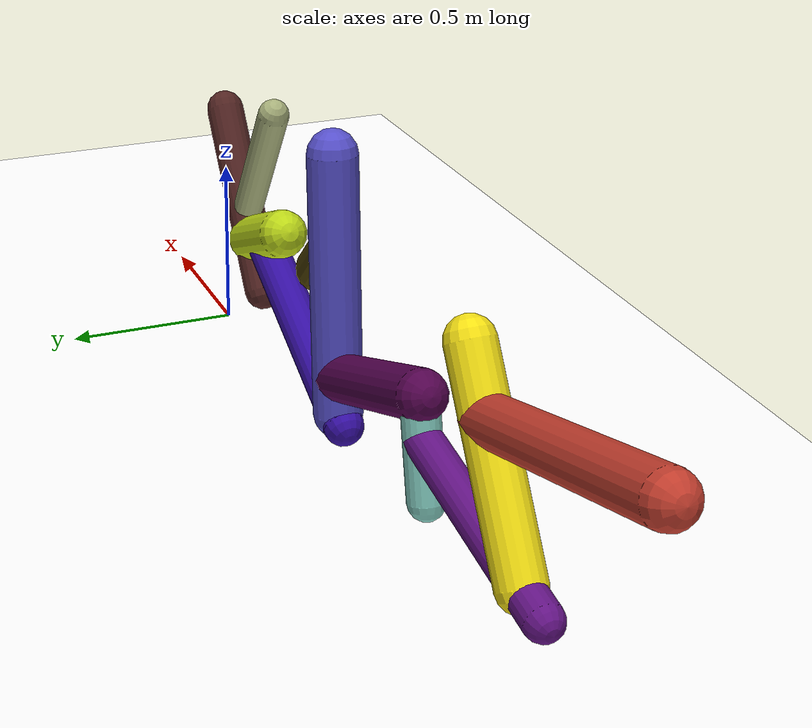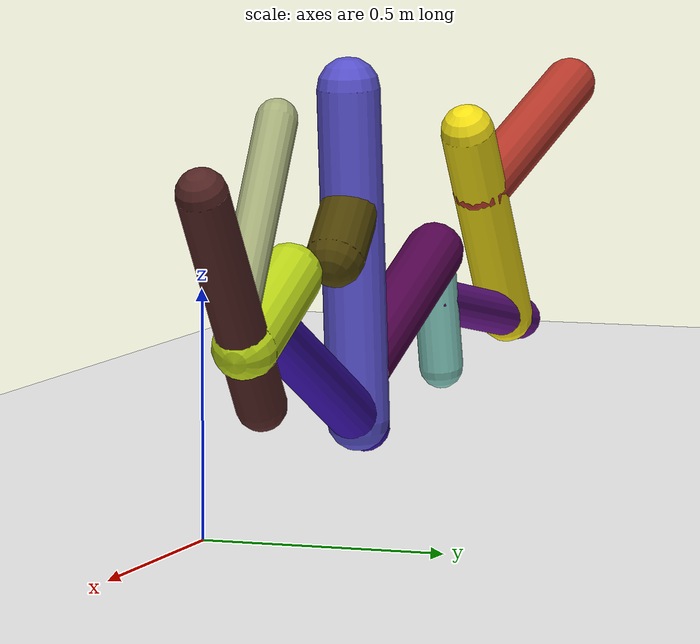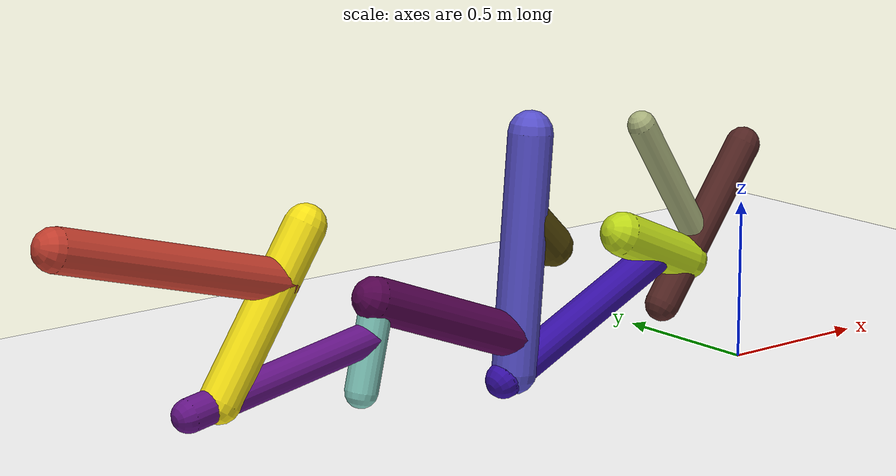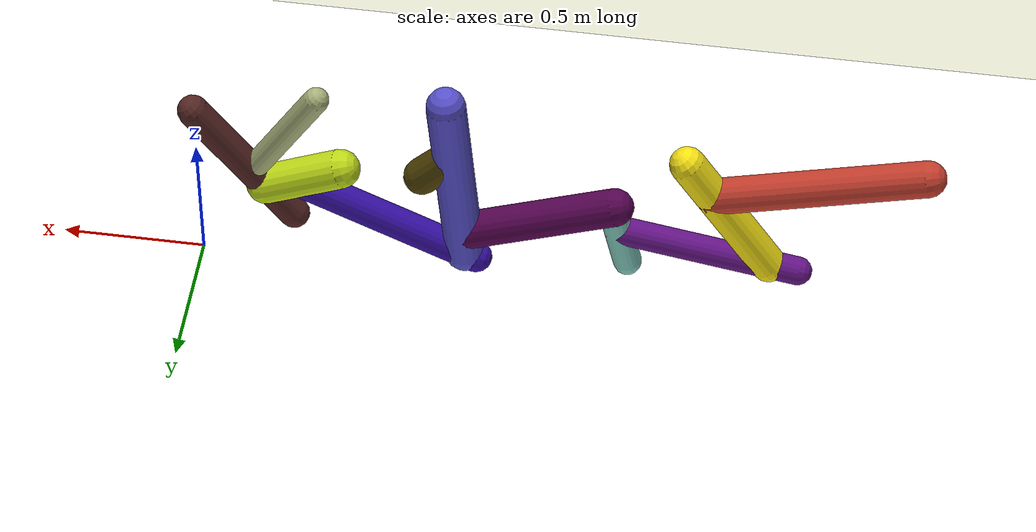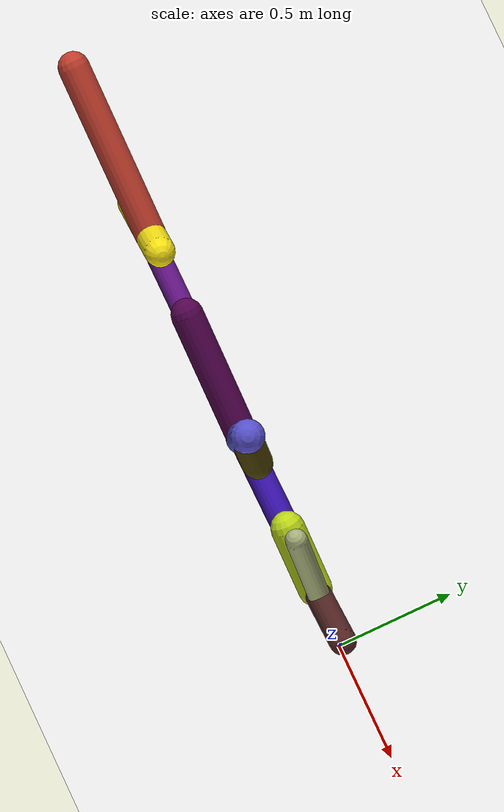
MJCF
<mujoco model="morphology">
  <option timestep="0.01"/>
  <default>
    <default class="/"/>
    <default class="0/"/>
    <default class="0/1/"/>
    <default class="0/2/"/>
    <default class="0/2/3/"/>
    <default class="0/2/3/4/"/>
    <default class="0/2/3/4/5/"/>
    <default class="0/2/3/4/6/"/>
    <default class="0/2/3/4/6/7/"/>
    <default class="0/2/3/4/6/7/8/"/>
    <default class="0/2/3/4/6/7/8/9/"/>
    <default class="0/2/3/4/6/7/8/9/10/"/>
  </default>
  <asset>
    <texture name="texplane" type="2d" builtin="checker" rgb1="0.10000000000000001 0.20000000000000001 0.29999999999999999" rgb2="0.20000000000000001 0.29999999999999999 0.40000000000000002" width="300" height="300"/>
    <material name="MatPlane" class="/" texture="texplane" texrepeat="20 20" specular="1" shininess="1" reflectance="0.5"/>
  </asset>
  <worldbody>
    <light name="//unnamed_light_0" class="/" directional="true" pos="0 0 1.5" dir="0 0 -1.3" cutoff="100" exponent="1" diffuse="1 1 1" specular="0.10000000000000001 0.10000000000000001 0.10000000000000001"/>
    <geom name="ground" class="/" type="plane" size="15 15 0.5" material="MatPlane" rgba="1 1 1 1"/>
    <site name="body" class="/" size="9.9999999999999995e-07 9.9999999999999995e-07 9.9999999999999995e-07" pos="0 0 0.68580863475799558"/>
    <body pos="0 0 0.68580863475799558" name="0/">
      <joint name="0/rootx/" class="/" type="slide" axis="1 0 0" limited="false" stiffness="0" armature="0" damping="0"/>
      <joint name="0/rootz/" class="/" type="slide" axis="0 0 1" limited="false" stiffness="0" armature="0" damping="0"/>
      <joint name="0/rooty/" class="/" type="hinge" axis="0 1 0" limited="false" stiffness="0" armature="0" damping="0"/>
      <geom name="0/geom" class="0/" type="capsule" contype="1" conaffinity="1" condim="3" size="0.054260358561492972" rgba="0.32704941696526657 0.14677226951037003 0.13913610244100971 1" friction="0.59999999999999998 0.10000000000000001 0.10000000000000001" fromto="0 0 0 -0.33195108732691458 0 -0.45965658521693992"/>
      <site name="0/end0" class="0/" size="0.0050000000000000001" pos="-0.33195108732691458 0 -0.45965658521693992"/>
      <site name="0/attach1" class="0/" size="9.9999999999999995e-07 9.9999999999999995e-07 9.9999999999999995e-07" pos="-0.19070182479982925 0 -0.26406706568730498"/>
      <body pos="-0.19070182479982925 0 -0.26406706568730498" name="0/1/">
        <geom name="0/1/geom" class="0/1/" type="capsule" contype="1" conaffinity="1" condim="3" size="0.044080219348491143" rgba="0.65968714395343553 0.69303136494858053 0.48432645758637494 1" friction="0.59999999999999998 0.10000000000000001 0.10000000000000001" fromto="0 0 0 -0.2365894241298383 0 0.37920692258653221"/>
        <site name="0/1/end1" class="0/1/" size="0.0050000000000000001" pos="-0.2365894241298383 0 0.37920692258653221"/>
      </body>
      <site name="0/attach2" class="0/" size="9.9999999999999995e-07 9.9999999999999995e-07 9.9999999999999995e-07" pos="-0.23808304077486786 0 -0.32967639419980332"/>
      <body pos="-0.23808304077486786 0 -0.32967639419980332" name="0/2/">
        <joint name="0/2/joint/" class="0/" type="hinge" axis="0 1 0" limited="true" range="-53.213120789474885 53.213120789474885"/>
        <geom name="0/2/geom" class="0/2/" type="capsule" contype="1" conaffinity="1" condim="3" size="0.068732582123802663" rgba="0.74610864140701905 0.85324672177204419 0.096344752977886805 1" friction="0.59999999999999998 0.10000000000000001 0.10000000000000001" fromto="0 0 0 -0.26247551142805731 0 0.11743449183391708"/>
        <site name="0/2/end2" class="0/2/" size="0.0050000000000000001" pos="-0.26247551142805731 0 0.11743449183391708"/>
        <site name="0/2/attach3" class="0/2/" size="9.9999999999999995e-07 9.9999999999999995e-07 9.9999999999999995e-07" pos="-0.098025205928687201 0 0.04385757811278973"/>
        <body pos="-0.098025205928687201 0 0.04385757811278973" name="0/2/3/">
          <joint name="0/2/3/joint/" class="0/2/" type="hinge" axis="0 1 0" limited="true" range="-59.391188494943549 59.391188494943549"/>
          <geom name="0/2/3/geom" class="0/2/3/" type="capsule" contype="1" conaffinity="1" condim="3" size="0.056071024756174564" rgba="0.21035384421745895 0.057550101113748364 0.64202002893227506 1" friction="0.59999999999999998 0.10000000000000001 0.10000000000000001" fromto="0 0 0 -0.63202428860090043 0 -0.29998981165278604"/>
          <site name="0/2/3/end3" class="0/2/3/" size="0.0050000000000000001" pos="-0.63202428860090043 0 -0.29998981165278604"/>
          <site name="0/2/3/attach4" class="0/2/3/" size="9.9999999999999995e-07 9.9999999999999995e-07 9.9999999999999995e-07" pos="-0.59226025789215875 0 -0.28111584699981745"/>
          <body pos="-0.59226025789215875 0 -0.28111584699981745" name="0/2/3/4/">
            <joint name="0/2/3/4/joint/" class="0/2/3/" type="hinge" axis="0 1 0" limited="true" range="-60.710786574107111 60.710786574107111"/>
            <geom name="0/2/3/4/geom" class="0/2/3/4/" type="capsule" contype="1" conaffinity="1" condim="3" size="0.067873996519004415" rgba="0.3475207998297617 0.32059522152390896 0.80847489579582765 1" friction="0.59999999999999998 0.10000000000000001 0.10000000000000001" fromto="0 0 0 0.061850025608420567 0 0.71507226587167327"/>
            <site name="0/2/3/4/end4" class="0/2/3/4/" size="0.0050000000000000001" pos="0.061850025608420567 0 0.71507226587167327"/>
            <site name="0/2/3/4/attach5" class="0/2/3/4/" size="9.9999999999999995e-07 9.9999999999999995e-07 9.9999999999999995e-07" pos="0.040820488887422055 0 0.47194159089797255"/>
            <body pos="0.040820488887422055 0 0.47194159089797255" name="0/2/3/4/5/">
              <joint name="0/2/3/4/5/joint/" class="0/2/3/4/" type="hinge" axis="0 1 0" limited="true" range="-61.790244396690746 61.790244396690746"/>
              <geom name="0/2/3/4/5/geom" class="0/2/3/4/5/" type="capsule" contype="1" conaffinity="1" condim="3" size="0.063943721890243027" rgba="0.30448618531165583 0.25248548066841126 0.019521781444720054 1" friction="0.59999999999999998 0.10000000000000001 0.10000000000000001" fromto="0 0 0 0.10558627910968954 0 -0.10886965304412488"/>
              <site name="0/2/3/4/5/end5" class="0/2/3/4/5/" size="0.0050000000000000001" pos="0.10558627910968954 0 -0.10886965304412488"/>
            </body>
            <site name="0/2/3/4/attach6" class="0/2/3/4/" size="9.9999999999999995e-07 9.9999999999999995e-07 9.9999999999999995e-07" pos="0.0090526510237380255 0 0.10466122877091526"/>
            <body pos="0.0090526510237380255 0 0.10466122877091526" name="0/2/3/4/6/">
              <joint name="0/2/3/4/6/joint/" class="0/2/3/4/" type="hinge" axis="0 1 0" limited="true" range="-57.54107020351077 57.54107020351077"/>
              <geom name="0/2/3/4/6/geom" class="0/2/3/4/6/" type="capsule" contype="1" conaffinity="1" condim="3" size="0.066130766676136932" rgba="0.32932568755491554 0.013809160282863719 0.30974531119487947 1" friction="0.59999999999999998 0.10000000000000001 0.10000000000000001" fromto="0 0 0 -0.52524525501919794 0 0.20499990527725664"/>
              <site name="0/2/3/4/6/end6" class="0/2/3/4/6/" size="0.0050000000000000001" pos="-0.52524525501919794 0 0.20499990527725664"/>
              <site name="0/2/3/4/6/attach7" class="0/2/3/4/6/" size="9.9999999999999995e-07 9.9999999999999995e-07 9.9999999999999995e-07" pos="-0.51503046824063303 0 0.2010131385201602"/>
              <body pos="-0.51503046824063303 0 0.2010131385201602" name="0/2/3/4/6/7/">
                <geom name="0/2/3/4/6/7/geom" class="0/2/3/4/6/7/" type="capsule" contype="1" conaffinity="1" condim="3" size="0.049247837761727364" rgba="0.51276863570486719 0.79966507413548815 0.75159527533086978 1" friction="0.59999999999999998 0.10000000000000001 0.10000000000000001" fromto="0 0 0 -0.061004302297028357 0 -0.26017518054999311"/>
                <site name="0/2/3/4/6/7/end7" class="0/2/3/4/6/7/" size="0.0050000000000000001" pos="-0.061004302297028357 0 -0.26017518054999311"/>
                <site name="0/2/3/4/6/7/attach8" class="0/2/3/4/6/7/" size="9.9999999999999995e-07 9.9999999999999995e-07 9.9999999999999995e-07" pos="-0.024912975831475524 0 -0.10625050596320808"/>
                <body pos="-0.024912975831475524 0 -0.10625050596320808" name="0/2/3/4/6/7/8/">
                  <joint name="0/2/3/4/6/7/8/joint/" class="0/2/3/4/6/7/" type="hinge" axis="0 1 0" limited="true" range="-38.247239913740998 38.247239913740998"/>
                  <geom name="0/2/3/4/6/7/8/geom" class="0/2/3/4/6/7/8/" type="capsule" contype="1" conaffinity="1" condim="3" size="0.049394578200541155" rgba="0.39234514922908725 0.076862908707125532 0.52506099170520881 1" friction="0.59999999999999998 0.10000000000000001 0.10000000000000001" fromto="0 0 0 -0.62222639857985973 0 -0.11076090431372188"/>
                  <site name="0/2/3/4/6/7/8/end8" class="0/2/3/4/6/7/8/" size="0.0050000000000000001" pos="-0.62222639857985973 0 -0.11076090431372188"/>
                  <site name="0/2/3/4/6/7/8/attach9" class="0/2/3/4/6/7/8/" size="9.9999999999999995e-07 9.9999999999999995e-07 9.9999999999999995e-07" pos="-0.52087518368604235 0 -0.092719637918476192"/>
                  <body pos="-0.52087518368604235 0 -0.092719637918476192" name="0/2/3/4/6/7/8/9/">
                    <joint name="0/2/3/4/6/7/8/9/joint/" class="0/2/3/4/6/7/8/" type="hinge" axis="0 1 0" limited="true" range="-41.018376501175275 41.018376501175275"/>
                    <geom name="0/2/3/4/6/7/8/9/geom" class="0/2/3/4/6/7/8/9/" type="capsule" contype="1" conaffinity="1" condim="3" size="0.06172084904227073" rgba="0.97038884886198118 0.88637904758817065 0.077097362139464387 1" friction="0.59999999999999998 0.10000000000000001 0.10000000000000001" fromto="0 0 0 0.29820930946840152 0 0.45465784196605541"/>
                    <site name="0/2/3/4/6/7/8/9/end9" class="0/2/3/4/6/7/8/9/" size="0.0050000000000000001" pos="0.29820930946840152 0 0.45465784196605541"/>
                    <site name="0/2/3/4/6/7/8/9/attach10" class="0/2/3/4/6/7/8/9/" size="9.9999999999999995e-07 9.9999999999999995e-07 9.9999999999999995e-07" pos="0.20376966965654206 0 0.31067265615997208"/>
                    <body pos="0.20376966965654206 0 0.31067265615997208" name="0/2/3/4/6/7/8/9/10/">
                      <joint name="0/2/3/4/6/7/8/9/10/joint/" class="0/2/3/4/6/7/8/9/" type="hinge" axis="0 1 0" limited="true" range="-40.552238678890859 40.552238678890859"/>
                      <geom name="0/2/3/4/6/7/8/9/10/geom" class="0/2/3/4/6/7/8/9/10/" type="capsule" contype="1" conaffinity="1" condim="3" size="0.062770949711964355" rgba="0.76637507192483523 0.24326533199238443 0.18089011187194104 1" friction="0.59999999999999998 0.10000000000000001 0.10000000000000001" fromto="0 0 0 -0.70430930602350195 0 0.19770478634039113"/>
                      <site name="0/2/3/4/6/7/8/9/10/end10" class="0/2/3/4/6/7/8/9/10/" size="0.0050000000000000001" pos="-0.70430930602350195 0 0.19770478634039113"/>
                    </body>
                  </body>
                </body>
              </body>
            </body>
          </body>
        </body>
      </body>
      <camera name="0/side" class="0/" mode="trackcom" pos="0.40000000000000002 -4 0.20000000000000001" quat="0.70699999999999996 0.70699999999999996 0 0"/>
    </body>
  </worldbody>
  <actuator>
    <motor name="0/2/motor" class="0/2/" ctrllimited="true" ctrlrange="-1 1" gear="80" joint="0/2/joint/"/>
    <motor name="0/2/3/motor" class="0/2/3/" ctrllimited="true" ctrlrange="-1 1" gear="65" joint="0/2/3/joint/"/>
    <motor name="0/2/3/4/motor" class="0/2/3/4/" ctrllimited="true" ctrlrange="-1 1" gear="69" joint="0/2/3/4/joint/"/>
    <motor name="0/2/3/4/5/motor" class="0/2/3/4/5/" ctrllimited="true" ctrlrange="-1 1" gear="76" joint="0/2/3/4/5/joint/"/>
    <motor name="0/2/3/4/6/motor" class="0/2/3/4/6/" ctrllimited="true" ctrlrange="-1 1" gear="89" joint="0/2/3/4/6/joint/"/>
    <motor name="0/2/3/4/6/7/8/motor" class="0/2/3/4/6/7/8/" ctrllimited="true" ctrlrange="-1 1" gear="56" joint="0/2/3/4/6/7/8/joint/"/>
    <motor name="0/2/3/4/6/7/8/9/motor" class="0/2/3/4/6/7/8/9/" ctrllimited="true" ctrlrange="-1 1" gear="69" joint="0/2/3/4/6/7/8/9/joint/"/>
    <motor name="0/2/3/4/6/7/8/9/10/motor" class="0/2/3/4/6/7/8/9/10/" ctrllimited="true" ctrlrange="-1 1" gear="61" joint="0/2/3/4/6/7/8/9/10/joint/"/>
  </actuator>
  <sensor>
    <subtreelinvel name="velocity" body="0/"/>
  </sensor>
</mujoco>
